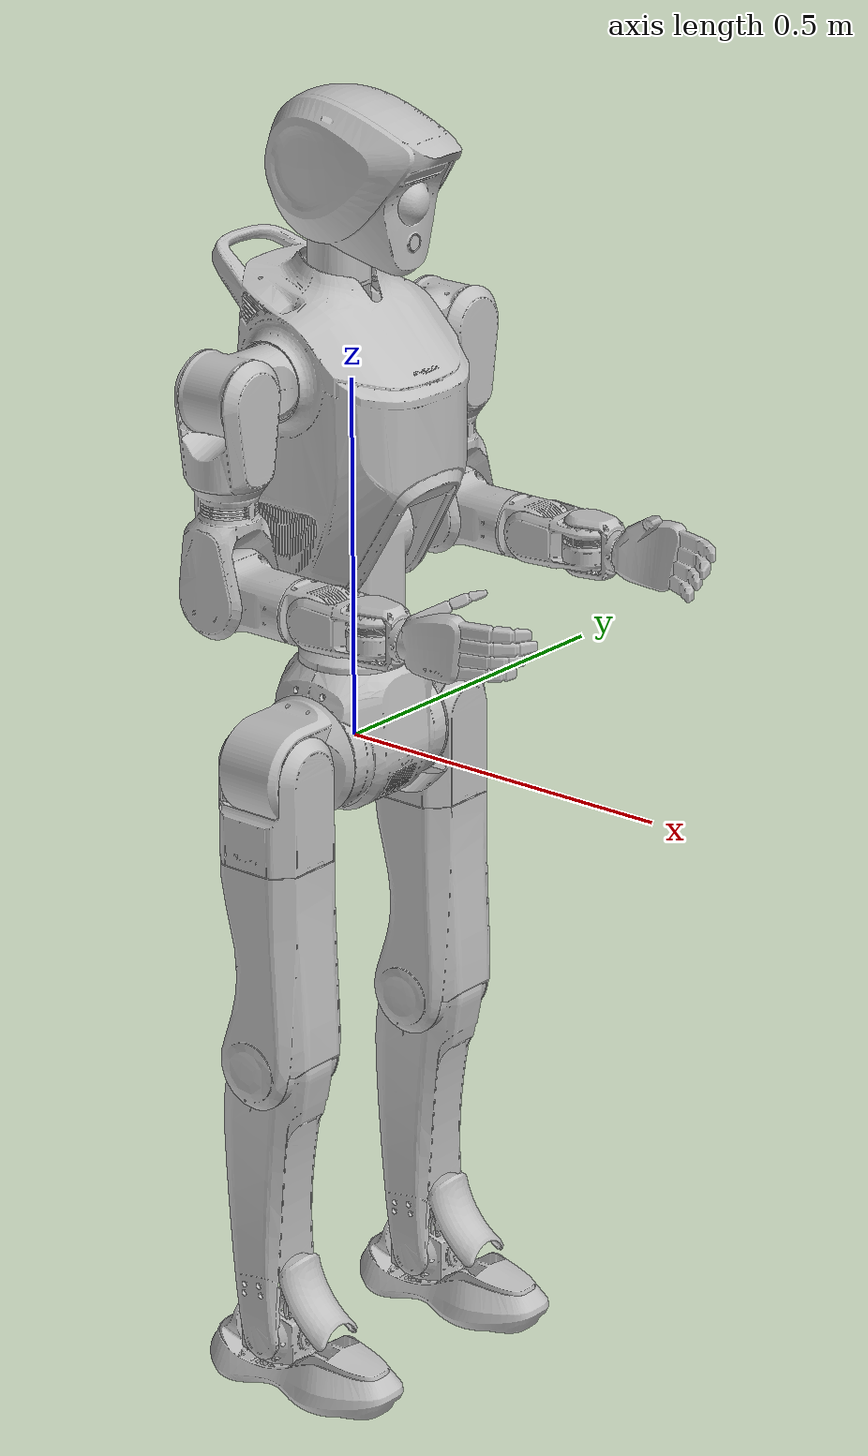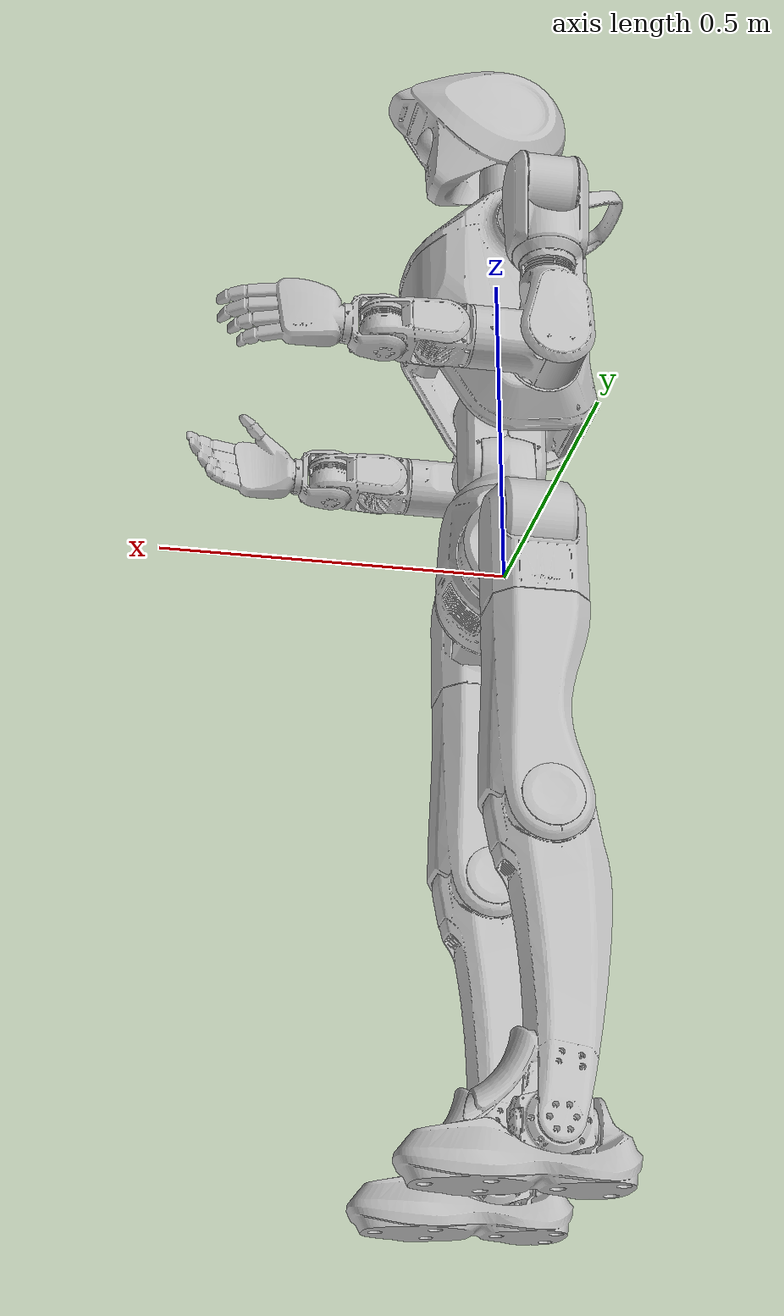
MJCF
<mujoco model="DR02_pro">
  <compiler angle="radian" meshdir="meshes/" />
  <asset>
    <mesh name="base_link" file="base_link.STL" />
    <mesh name="waist_z_link" file="waist_z_link.STL" />
    <mesh name="waist_x_link" file="waist_x_link.STL" />
    <mesh name="body" file="body.STL" />
    <mesh name="left_shoulder_y_link" file="left_shoulder_y_link.STL" />
    <mesh name="left_shoulder_x_link" file="left_shoulder_x_link.STL" />
    <mesh name="left_shoulder_z_link" file="left_shoulder_z_link.STL" />
    <mesh name="left_elbow_link" file="left_elbow_link.STL" />
    <mesh name="left_wrist_z_link" file="left_wrist_z_link.STL" />
    <mesh name="left_wrist_y_link" file="left_wrist_y_link.STL" />
    <mesh name="left_wrist_x_link" file="left_wrist_x_link.STL" />
    <mesh name="left_hand_link" file="left_hand_link.STL" />
    <mesh name="right_shoulder_y_link" file="right_shoulder_y_link.STL" />
    <mesh name="right_shoulder_x_link" file="right_shoulder_x_link.STL" />
    <mesh name="right_shoulder_z_link" file="right_shoulder_z_link.STL" />
    <mesh name="right_elbow_link" file="right_elbow_link.STL" />
    <mesh name="right_wrist_z_link" file="right_wrist_z_link.STL" />
    <mesh name="right_wrist_y_link" file="right_wrist_y_link.STL" />
    <mesh name="right_wrist_x_link" file="right_wrist_x_link.STL" />
    <mesh name="right_hand_link" file="right_hand_link.STL" />
    <mesh name="neck_link" file="neck_link.STL" />
    <mesh name="head_link" file="head_link.STL" />
    <mesh name="left_hip_y_link" file="left_hip_y_link.STL" />
    <mesh name="left_hip_x_link" file="left_hip_x_link.STL" />
    <mesh name="left_hip_z_link" file="left_hip_z_link.STL" />
    <mesh name="left_knee_link" file="left_knee_link.STL" />
    <mesh name="left_ankle_y_link" file="left_ankle_y_link.STL" />
    <mesh name="left_ankle_x_link" file="left_ankle_x_link.STL" />
    <mesh name="right_hip_y_link" file="right_hip_y_link.STL" />
    <mesh name="right_hip_x_link" file="right_hip_x_link.STL" />
    <mesh name="right_hip_z_link" file="right_hip_z_link.STL" />
    <mesh name="right_knee_link" file="right_knee_link.STL" />
    <mesh name="right_ankle_y_link" file="right_ankle_y_link.STL" />
    <mesh name="right_ankle_x_link" file="right_ankle_x_link.STL" />
    <material name="base_link_mat" rgba="0.7529 0.7529 0.7529 1" specular="0" />
    <material name="waist_z_link_mat" rgba="0.7529 0.7529 0.7529 1" specular="0" />
    <material name="waist_x_link_mat" rgba="0.7529 0.7529 0.7529 1" specular="0" />
    <material name="body_mat" rgba="0.7529 0.7529 0.7529 1" specular="0" />
    <material name="left_shoulder_y_link_mat" rgba="0.7529 0.7529 0.7529 1" specular="0" />
    <material name="left_shoulder_x_link_mat" rgba="0.7529 0.7529 0.7529 1" specular="0" />
    <material name="left_shoulder_z_link_mat" rgba="0.7529 0.7529 0.7529 1" specular="0" />
    <material name="left_elbow_link_mat" rgba="0.7529 0.7529 0.7529 1" specular="0" />
    <material name="left_wrist_z_link_mat" rgba="0.7529 0.7529 0.7529 1" specular="0" />
    <material name="left_wrist_y_link_mat" rgba="0.7529 0.7529 0.7529 1" specular="0" />
    <material name="left_wrist_x_link_mat" rgba="0.7529 0.7529 0.7529 1" specular="0" />
    <material name="left_hand_link_mat" rgba="0.7529 0.7529 0.7529 1" specular="0" />
    <material name="right_shoulder_y_link_mat" rgba="0.7529 0.7529 0.7529 1" specular="0" />
    <material name="right_shoulder_x_link_mat" rgba="0.7529 0.7529 0.7529 1" specular="0" />
    <material name="right_shoulder_z_link_mat" rgba="0.7529 0.7529 0.7529 1" specular="0" />
    <material name="right_elbow_link_mat" rgba="0.7529 0.7529 0.7529 1" specular="0" />
    <material name="right_wrist_z_link_mat" rgba="0.7529 0.7529 0.7529 1" specular="0" />
    <material name="right_wrist_y_link_mat" rgba="0.7529 0.7529 0.7529 1" specular="0" />
    <material name="right_wrist_x_link_mat" rgba="0.7529 0.7529 0.7529 1" specular="0" />
    <material name="right_hand_link_mat" rgba="0.7529 0.7529 0.7529 1" specular="0" />
    <material name="neck_link_mat" rgba="0.7529 0.7529 0.7529 1" specular="0" />
    <material name="head_link_mat" rgba="0.7529 0.7529 0.7529 1" specular="0" />
    <material name="left_hip_y_link_mat" rgba="0.7529 0.7529 0.7529 1" specular="0" />
    <material name="left_hip_x_link_mat" rgba="0.7529 0.7529 0.7529 1" specular="0" />
    <material name="left_hip_z_link_mat" rgba="0.7529 0.7529 0.7529 1" specular="0" />
    <material name="left_knee_link_mat" rgba="0.7529 0.7529 0.7529 1" specular="0" />
    <material name="left_ankle_y_link_mat" rgba="0.7529 0.7529 0.7529 1" specular="0" />
    <material name="left_ankle_x_link_mat" rgba="0.7529 0.7529 0.7529 1" specular="0" />
    <material name="right_hip_y_link_mat" rgba="0.7529 0.7529 0.7529 1" specular="0" />
    <material name="right_hip_x_link_mat" rgba="0.7529 0.7529 0.7529 1" specular="0" />
    <material name="right_hip_z_link_mat" rgba="0.7529 0.7529 0.7529 1" specular="0" />
    <material name="right_knee_link_mat" rgba="0.7529 0.7529 0.7529 1" specular="0" />
    <material name="right_ankle_y_link_mat" rgba="0.7529 0.7529 0.7529 1" specular="0" />
    <material name="right_ankle_x_link_mat" rgba="0.7529 0.7529 0.7529 1" specular="0" />
  </asset>

  <worldbody>
    <body name="base_link" pos="0 0 0">
      <freejoint/>
      <inertial pos="0.000093 0.000006 0.013323" mass="8.078843" fullinertia="0.048025 0.033226 0.038207 0.000023 -0.000507 -0.000004"/>
      <geom pos="0 0 0" group="1" contype="0" conaffinity="0" material="base_link_mat" type="mesh" mesh="base_link" />
      <geom pos="0 0 0" quat="0.7071068 0.7071068 0 0" rgba="0.9373 0.2667 0.2667 1" group="3" contype="1" conaffinity="1" type="cylinder" size="0.085 0.07" />
      <body name="waist_z_link" pos="0 0 0.176">
        <joint name="waist_z_joint" type="hinge" axis="0 0 1" limited="true" range="-1.7453 3.6652" damping="0" frictionloss="0"/>
        <inertial pos="-0.002936 -0.001561 -0.014041" mass="1.694743" fullinertia="0.002899 0.003143 0.002813 -0.000006 -0.00004 0.000019"/>
        <geom pos="0 0 0" group="1" contype="0" conaffinity="0" material="waist_z_link_mat" type="mesh" mesh="waist_z_link" />
        <geom pos="0 0 -0.065" rgba="0.9373 0.2667 0.2667 1" group="3" contype="1" conaffinity="1" type="cylinder" size="0.08 0.02" />
        <body name="waist_x_link" pos="0 0 0">
          <joint name="waist_x_joint" type="hinge" axis="1 0 0" limited="true" range="-0.6981 0.6981" damping="0" frictionloss="0"/>
          <inertial pos="0.000955 0.006834 0.098478" mass="2.795884" fullinertia="0.008477 0.008945 0.005776 -0.000054 -0.000012 0.000354"/>
          <geom pos="0 0 0" group="1" contype="0" conaffinity="0" material="waist_x_link_mat" type="mesh" mesh="waist_x_link" />
          <geom pos="0 0 0.03" rgba="0.9373 0.2667 0.2667 1" group="3" contype="1" conaffinity="1" type="box" size="0.06 0.045 0.07" />
          <body name="body" pos="0 0 0.114">
            <joint name="waist_y_joint" type="hinge" axis="0 1 0" limited="true" range="-0.5236 1.5708" damping="0" frictionloss="0"/>
            <inertial pos="-0.02736 0.000277 0.165088" mass="19.455528" fullinertia="0.199365 0.190686 0.122555 -0.000372 -0.009879 0.000019"/>
            <geom pos="0 0 0" group="1" contype="0" conaffinity="0" material="body_mat" type="mesh" mesh="body" />
            <geom pos="-0.025 0 0" rgba="0.9373 0.2667 0.2667 1" group="3" contype="1" conaffinity="1" type="box" size="0.1 0.115 0.055" />
            <geom pos="0 0 0.158" rgba="0.9373 0.2667 0.2667 1" group="3" contype="1" conaffinity="1" type="box" size="0.125 0.125 0.09" />
            <geom pos="-0.01 0 0.29" rgba="0.9373 0.2667 0.2667 1" group="3" contype="1" conaffinity="1" type="box" size="0.1 0.12 0.03" />
            <body name="left_shoulder_y_link" pos="-0.02 0.22315 0.235">
              <joint name="left_shoulder_y_joint" type="hinge" axis="0 1 0" limited="true" range="-3.8397 1.5708" damping="0" frictionloss="0"/>
              <inertial pos="0.001479 -0.014833 0.000165" mass="1.400436" fullinertia="0.001991 0.001019 0.001997 0.000033 0.000001 -0.000002"/>
              <geom pos="0 0 0" group="1" contype="0" conaffinity="0" material="left_shoulder_y_link_mat" type="mesh" mesh="left_shoulder_y_link" />
              <body name="left_shoulder_x_link" pos="0 0 0">
                <joint name="left_shoulder_x_joint" type="hinge" axis="1 0 0" limited="true" range="-0.349066 3.49066" damping="0" frictionloss="0"/>
                <inertial pos="0.000432 0 -0.048362" mass="0.697075" fullinertia="0.001572 0.002243 0.001601 0 -0.000004 0"/>
                <geom pos="0 0 0" group="1" contype="0" conaffinity="0" material="left_shoulder_x_link_mat" type="mesh" mesh="left_shoulder_x_link" />
                <geom pos="0 0 -0.09" rgba="0.9373 0.2667 0.2667 1" group="3" contype="1" conaffinity="1" type="cylinder" size="0.055 0.0275" />
                <geom pos="0 0 0" quat="0.7071068 0 0.7071068 0" rgba="0.9373 0.2667 0.2667 1" group="3" contype="1" conaffinity="1" type="cylinder" size="0.055 0.055" />
                <body name="left_shoulder_z_link" pos="0 0 -0.265">
                  <joint name="left_shoulder_z_joint" type="hinge" axis="0 0 1" limited="true" range="-2.9671 2.9671" damping="0" frictionloss="0"/>
                  <inertial pos="-0.00426 -0.0003 0.094408" mass="1.720926" fullinertia="0.00612 0.005808 0.001952 0.000004 0.000286 0.000054"/>
                  <geom pos="0 0 0" group="1" contype="0" conaffinity="0" material="left_shoulder_z_link_mat" type="mesh" mesh="left_shoulder_z_link" />
                  <geom pos="-0.005 0 0.08" rgba="0.9373 0.2667 0.2667 1" group="3" contype="1" conaffinity="1" type="cylinder" size="0.057 0.02" />
                  <body name="left_elbow_link" pos="0 0 0" quat="0.7071055 0 -0.7071081 0">
                    <joint name="left_elbow_joint" type="hinge" axis="0 1 0" limited="true" range="-0.767945 1.74533" damping="0" frictionloss="0"/>
                    <inertial pos="-0.000115 0.000392 -0.030212" mass="1.77865" fullinertia="0.003455 0.003429 0.00111 0.000013 0.000015 0.000036"/>
                    <geom pos="0 0 0" group="1" contype="0" conaffinity="0" material="left_elbow_link_mat" type="mesh" mesh="left_elbow_link" />
                    <geom pos="0 0 0" quat="0.7071068 0.7071068 0 0" rgba="0.9373 0.2667 0.2667 1" group="3" contype="1" conaffinity="1" type="cylinder" size="0.055 0.055" />
                    <geom pos="0 0 -0.09" rgba="0.9373 0.2667 0.2667 1" group="3" contype="1" conaffinity="1" type="cylinder" size="0.045 0.03" />
                    <body name="left_wrist_z_link" pos="0 0 -0.1595">
                      <joint name="left_wrist_z_joint" type="hinge" axis="0 0 1" limited="true" range="-2.9671 2.9671" damping="0" frictionloss="0"/>
                      <inertial pos="0.000148 -0.000673 0.006914" mass="0.710278" fullinertia="0.000486 0.000498 0.000376 0.000001 -0.000001 0.00001"/>
                      <geom pos="0 0 0" group="1" contype="0" conaffinity="0" material="left_wrist_z_link_mat" type="mesh" mesh="left_wrist_z_link" />
                      <geom pos="0 0 -0.01" quat="0.7071068 0.7071068 0 0" rgba="0.9373 0.2667 0.2667 1" group="3" contype="1" conaffinity="1" type="cylinder" size="0.042 0.045" />
                      <body name="left_wrist_y_link" pos="0 0 0">
                        <joint name="left_wrist_y_joint" type="hinge" axis="0 1 0" limited="true" range="-1.5708 1.5708" damping="0" frictionloss="0"/>
                        <inertial pos="0.00063 -0.000004 -0.065156" mass="0.774016" fullinertia="0.000986 0.000886 0.000541 -0.000001 0.000007 0"/>
                        <geom pos="0 0 0" group="1" contype="0" conaffinity="0" material="left_wrist_y_link_mat" type="mesh" mesh="left_wrist_y_link" />
                        <geom pos="0 0 -0.09" quat="0.7071068 0 0.7071068 0" rgba="0.9373 0.2667 0.2667 1" group="3" contype="1" conaffinity="1" type="cylinder" size="0.035 0.0425" />
                        <body name="left_wrist_x_link" pos="0 0 -0.08">
                          <joint name="left_wrist_x_joint" type="hinge" axis="1 0 0" limited="true" range="-1.5708 1.5708" damping="0" frictionloss="0"/>
                          <inertial pos="-0.000378 0 -0.027815" mass="0.158317" fullinertia="0.000122 0.000236 0.000178 0 -0.000007 0"/>
                          <geom pos="0 0 0" group="1" contype="0" conaffinity="0" material="left_wrist_x_link_mat" type="mesh" mesh="left_wrist_x_link" />
                          <body name="left_hand_link" pos="0 0 -0.0602">
                            <inertial pos="0.011516 -0.002698 -0.065583" mass="0.23" fullinertia="0.0006 0.000689 0.000222 -0.000007 -0.000041 0.000075"/>
                            <geom pos="0 0 0" group="1" contype="0" conaffinity="0" material="left_hand_link_mat" type="mesh" mesh="left_hand_link" />
                            <geom pos="0 0 0" rgba="0.9373 0.2667 0.2667 1" group="3" contype="1" conaffinity="1" type="mesh" mesh="left_hand_link" />
                          </body>
                        </body>
                      </body>
                    </body>
                  </body>
                </body>
              </body>
            </body>
            <body name="right_shoulder_y_link" pos="-0.02 -0.22315 0.235">
              <joint name="right_shoulder_y_joint" type="hinge" axis="0 1 0" limited="true" range="-3.8397 1.5708" damping="0" frictionloss="0"/>
              <inertial pos="0.001479 0.014833 -0.000165" mass="1.400436" fullinertia="0.001991 0.001019 0.001997 -0.000033 -0.000001 -0.000002"/>
              <geom pos="0 0 0" group="1" contype="0" conaffinity="0" material="right_shoulder_y_link_mat" type="mesh" mesh="right_shoulder_y_link" />
              <body name="right_shoulder_x_link" pos="0 0 0">
                <joint name="right_shoulder_x_joint" type="hinge" axis="1 0 0" limited="true" range="-3.49066 0.349066" damping="0" frictionloss="0"/>
                <inertial pos="0.000432 0 -0.048362" mass="0.697075" fullinertia="0.001572 0.002243 0.001601 0 -0.000004 0"/>
                <geom pos="0 0 0" group="1" contype="0" conaffinity="0" material="right_shoulder_x_link_mat" type="mesh" mesh="right_shoulder_x_link" />
                <geom pos="0 0 -0.09" rgba="0.9373 0.2667 0.2667 1" group="3" contype="1" conaffinity="1" type="cylinder" size="0.055 0.0275" />
                <geom pos="0 0 0" quat="0.7071068 0 0.7071068 0" rgba="0.9373 0.2667 0.2667 1" group="3" contype="1" conaffinity="1" type="cylinder" size="0.055 0.055" />
                <body name="right_shoulder_z_link" pos="0 0 -0.265">
                  <joint name="right_shoulder_z_joint" type="hinge" axis="0 0 1" limited="true" range="-2.9671 2.9671" damping="0" frictionloss="0"/>
                  <inertial pos="-0.00426 -0.0003 0.094408" mass="1.720926" fullinertia="0.00612 0.005808 0.001952 0.000004 0.000286 0.000054"/>
                  <geom pos="0 0 0" group="1" contype="0" conaffinity="0" material="right_shoulder_z_link_mat" type="mesh" mesh="right_shoulder_z_link" />
                  <geom pos="-0.005 0 0.08" rgba="0.9373 0.2667 0.2667 1" group="3" contype="1" conaffinity="1" type="cylinder" size="0.057 0.02" />
                  <body name="right_elbow_link" pos="0 0 0" quat="0.7071055 0 -0.7071081 0">
                    <joint name="right_elbow_joint" type="hinge" axis="0 1 0" limited="true" range="-0.767945 1.74533" damping="0" frictionloss="0"/>
                    <inertial pos="-0.000117 0.000389 -0.030213" mass="1.77865" fullinertia="0.003455 0.003429 0.00111 0.000013 0.000015 0.000036"/>
                    <geom pos="0 0 0" group="1" contype="0" conaffinity="0" material="right_elbow_link_mat" type="mesh" mesh="right_elbow_link" />
                    <geom pos="0 0 0" quat="0.7071068 0.7071068 0 0" rgba="0.9373 0.2667 0.2667 1" group="3" contype="1" conaffinity="1" type="cylinder" size="0.055 0.055" />
                    <geom pos="0 0 -0.09" rgba="0.9373 0.2667 0.2667 1" group="3" contype="1" conaffinity="1" type="cylinder" size="0.045 0.03" />
                    <body name="right_wrist_z_link" pos="0 0 -0.1595">
                      <joint name="right_wrist_z_joint" type="hinge" axis="0 0 1" limited="true" range="-2.9671 2.9671" damping="0" frictionloss="0"/>
                      <inertial pos="0.000148 -0.000673 0.006914" mass="0.710278" fullinertia="0.000486 0.000498 0.000376 0.000001 -0.000001 0.00001"/>
                      <geom pos="0 0 0" group="1" contype="0" conaffinity="0" material="right_wrist_z_link_mat" type="mesh" mesh="right_wrist_z_link" />
                      <geom pos="0 0 -0.01" quat="0.7071068 0.7071068 0 0" rgba="0.9373 0.2667 0.2667 1" group="3" contype="1" conaffinity="1" type="cylinder" size="0.042 0.045" />
                      <body name="right_wrist_y_link" pos="0 0 0">
                        <joint name="right_wrist_y_joint" type="hinge" axis="0 1 0" limited="true" range="-1.5708 1.5708" damping="0" frictionloss="0"/>
                        <inertial pos="0.00063 -0.000004 -0.065156" mass="0.774016" fullinertia="0.000986 0.000886 0.000541 -0.000001 0.000007 0"/>
                        <geom pos="0 0 0" group="1" contype="0" conaffinity="0" material="right_wrist_y_link_mat" type="mesh" mesh="right_wrist_y_link" />
                        <geom pos="0 0 -0.09" quat="0.7071068 0 0.7071068 0" rgba="0.9373 0.2667 0.2667 1" group="3" contype="1" conaffinity="1" type="cylinder" size="0.035 0.0425" />
                        <body name="right_wrist_x_link" pos="0 0 -0.08">
                          <joint name="right_wrist_x_joint" type="hinge" axis="1 0 0" limited="true" range="-1.5708 1.5708" damping="0" frictionloss="0"/>
                          <inertial pos="-0.00038 0 -0.027815" mass="0.158317" fullinertia="0.000122 0.000236 0.000178 0 -0.000007 0"/>
                          <geom pos="0 0 0" group="1" contype="0" conaffinity="0" material="right_wrist_x_link_mat" type="mesh" mesh="right_wrist_x_link" />
                          <body name="right_hand_link" pos="0 0 -0.0602">
                            <inertial pos="0.011411 0.002729 -0.06492" mass="0.23" fullinertia="0.000602 0.000691 0.000221 0.000007 -0.000042 -0.000074"/>
                            <geom pos="0 0 0" group="1" contype="0" conaffinity="0" material="right_hand_link_mat" type="mesh" mesh="right_hand_link" />
                            <geom pos="0 0 0" rgba="0.9373 0.2667 0.2667 1" group="3" contype="1" conaffinity="1" type="mesh" mesh="right_hand_link" />
                          </body>
                        </body>
                      </body>
                    </body>
                  </body>
                </body>
              </body>
            </body>
            <body name="neck_link" pos="-0.02 0 0.4645">
              <joint name="neck_z_joint" type="hinge" axis="0 0 1" limited="true" range="-1.745329 3.665191" damping="0" frictionloss="0"/>
              <inertial pos="0.000649 0.00075 -0.060572" mass="1.532065" fullinertia="0.005199 0.005165 0.001384 0.000002 -0.000063 0.000078"/>
              <geom pos="0 0 0" group="1" contype="0" conaffinity="0" material="neck_link_mat" type="mesh" mesh="neck_link" />
              <geom pos="-0.009 0 -0.1" rgba="0.9373 0.2667 0.2667 1" group="3" contype="1" conaffinity="1" type="cylinder" size="0.05 0.035" />
              <body name="head_link" pos="0 0 0">
                <joint name="neck_y_joint" type="hinge" axis="0 1 0" limited="true" range="-0.349066 0.349066" damping="0" frictionloss="0"/>
                <inertial pos="0.049972 -0.00004 0.036839" mass="2.577004" fullinertia="0.011375 0.018713 0.015509 -0.000086 -0.001142 -0.000017"/>
                <geom pos="0 0 0" group="1" contype="0" conaffinity="0" material="head_link_mat" type="mesh" mesh="head_link" />
                <geom pos="0.02 0 0.028" rgba="0.9373 0.2667 0.2667 1" group="3" contype="1" conaffinity="1" type="sphere" size="0.115" />
              </body>
            </body>
            <body name="d435_head_link" pos="0.11871 0.0175 0.5096" quat="0.9537177 0 0.3007033 0">
            </body>
            <body name="d435_front_link" pos="0.12559 0.0175 0.078407" quat="0.8660248 0 0.5000011 0">
            </body>
            <body name="d435_rear_link" pos="-0.11241 -0.0175 -0.037264" quat="-0.0000032 -0.5000011 -0.0000018 0.8660248">
            </body>
            <body name="lidar_link" pos="0.09784 0.00001 0.4645">
            </body>
            <body name="imu_head_link" pos="-0.0003333 0.021947 0.56429">
            </body>
            <body name="imu_base_link" pos="-0.0003333 0.0014869 -0.3546">
            </body>
          </body>
        </body>
      </body>
      <body name="left_hip_y_link" pos="0 0.1614 0">
        <joint name="left_hip_y_joint" type="hinge" axis="0 1 0" limited="true" range="-2.7925 1.5708" damping="0" frictionloss="0"/>
        <inertial pos="0.004459 -0.007774 0.001313" mass="2.633192" fullinertia="0.005575 0.005395 0.005662 0.000142 -0.00004 -0.000144"/>
        <geom pos="0 0 0" group="1" contype="0" conaffinity="0" material="left_hip_y_link_mat" type="mesh" mesh="left_hip_y_link" />
        <geom pos="0 0 0" quat="0.7071068 0 0.7071068 0" rgba="0.9373 0.2667 0.2667 1" group="3" contype="1" conaffinity="1" type="cylinder" size="0.07 0.0675" />
        <body name="left_hip_x_link" pos="0 0 0">
          <joint name="left_hip_x_joint" type="hinge" axis="1 0 0" limited="true" range="-0.349066 2.618" damping="0" frictionloss="0"/>
          <inertial pos="0.001042 0.00317 -0.074161" mass="1.131509" fullinertia="0.004145 0.005869 0.003914 0.00001 0.000131 -0.000028"/>
          <geom pos="0 0 0" group="1" contype="0" conaffinity="0" material="left_hip_x_link_mat" type="mesh" mesh="left_hip_x_link" />
          <body name="left_hip_z_link" pos="0 0 -0.1282">
            <joint name="left_hip_z_joint" type="hinge" axis="0 0 1" limited="true" range="-0.5236 3.6652" damping="0" frictionloss="0"/>
            <inertial pos="0.008727 -0.002657 -0.111164" mass="2.690763" fullinertia="0.030191 0.028573 0.007663 0.000088 -0.001328 0.001237"/>
            <geom pos="0 0 0" group="1" contype="0" conaffinity="0" material="left_hip_z_link_mat" type="mesh" mesh="left_hip_z_link" />
            <geom pos="0 0 -0.115" rgba="0.9373 0.2667 0.2667 1" group="3" contype="1" conaffinity="1" type="cylinder" size="0.07 0.11" />
            <body name="left_knee_link" pos="0 0 -0.2912">
              <joint name="left_knee_joint" type="hinge" axis="0 1 0" limited="true" range="-0.17453 2.4958" damping="0" frictionloss="0"/>
              <inertial pos="-0.005009 -0.00145 -0.092743" mass="4.246652" fullinertia="0.087743 0.08693 0.009302 0.000037 0.002339 -0.001565"/>
              <geom pos="0 0 0" group="1" contype="0" conaffinity="0" material="left_knee_link_mat" type="mesh" mesh="left_knee_link" />
              <geom pos="0 0 0" quat="0.7071068 0.7071068 0 0" rgba="0.9373 0.2667 0.2667 1" group="3" contype="1" conaffinity="1" type="cylinder" size="0.06 0.07" />
              <geom pos="-0.02 0 -0.21" rgba="0.9373 0.2667 0.2667 1" group="3" contype="1" conaffinity="1" type="cylinder" size="0.06 0.14" />
              <body name="left_ankle_y_link" pos="0 0 -0.41">
                <joint name="left_ankle_y_joint" type="hinge" axis="0 1 0" limited="true" range="-1.0472 0.7854" damping="0" frictionloss="0"/>
                <inertial pos="0.000479 0.003282 0.000327" mass="1.377835" fullinertia="0.001529 0.001772 0.001906 -0.000012 0.000002 -0.000003"/>
                <geom pos="0 0 0" group="1" contype="0" conaffinity="0" material="left_ankle_y_link_mat" type="mesh" mesh="left_ankle_y_link" />
                <geom pos="0 0 0" quat="0.7071068 0.7071068 0 0" rgba="0.9373 0.2667 0.2667 1" group="3" contype="1" conaffinity="1" type="cylinder" size="0.044 0.055" />
                <body name="left_ankle_x_link" pos="0 0 0">
                  <joint name="left_ankle_x_joint" type="hinge" axis="1 0 0" limited="true" range="-0.61087 0.61087" damping="0" frictionloss="0"/>
                  <inertial pos="0.047077 0.00007 -0.031008" mass="1.425863" fullinertia="0.00228 0.008128 0.007645 0.000004 0.000481 0.000002"/>
                  <geom pos="0 0 0" group="1" contype="0" conaffinity="0" material="left_ankle_x_link_mat" type="mesh" mesh="left_ankle_x_link" />
                  <geom pos="0.045 0 -0.045" rgba="0.9373 0.2667 0.2667 1" group="3" contype="1" conaffinity="1" type="box" size="0.15 0.055 0.03" />
                </body>
              </body>
            </body>
          </body>
        </body>
      </body>
      <body name="right_hip_y_link" pos="0 -0.1614 0">
        <joint name="right_hip_y_joint" type="hinge" axis="0 1 0" limited="true" range="-2.7925 1.5708" damping="0" frictionloss="0"/>
        <inertial pos="-0.004459 0.007774 0.001313" mass="2.633192" fullinertia="0.005575 0.005395 0.005662 0.000142 0.00004 0.000144"/>
        <geom pos="0 0 0" group="1" contype="0" conaffinity="0" material="right_hip_y_link_mat" type="mesh" mesh="right_hip_y_link" />
        <geom pos="0 0 0" quat="0.7071068 0 0.7071068 0" rgba="0.9373 0.2667 0.2667 1" group="3" contype="1" conaffinity="1" type="cylinder" size="0.07 0.0675" />
        <body name="right_hip_x_link" pos="0 0 0">
          <joint name="right_hip_x_joint" type="hinge" axis="1 0 0" limited="true" range="-2.618 0.349066" damping="0" frictionloss="0"/>
          <inertial pos="-0.001042 -0.00317 -0.074161" mass="1.131509" fullinertia="0.004145 0.005869 0.003914 0.00001 -0.000131 0.000028"/>
          <geom pos="0 0 0" group="1" contype="0" conaffinity="0" material="right_hip_x_link_mat" type="mesh" mesh="right_hip_x_link" />
          <body name="right_hip_z_link" pos="0 0 -0.1282">
            <joint name="right_hip_z_joint" type="hinge" axis="0 0 1" limited="true" range="-3.6652 0.5236" damping="0" frictionloss="0"/>
            <inertial pos="0.008727 -0.002657 -0.111164" mass="2.690763" fullinertia="0.030191 0.028573 0.007663 0.000088 -0.001328 0.001237"/>
            <geom pos="0 0 0" group="1" contype="0" conaffinity="0" material="right_hip_z_link_mat" type="mesh" mesh="right_hip_z_link" />
            <geom pos="0 0 -0.115" rgba="0.9373 0.2667 0.2667 1" group="3" contype="1" conaffinity="1" type="cylinder" size="0.07 0.11" />
            <body name="right_knee_link" pos="0 0 -0.2912">
              <joint name="right_knee_joint" type="hinge" axis="0 1 0" limited="true" range="-0.17453 2.4958" damping="0" frictionloss="0"/>
              <inertial pos="-0.005009 -0.00145 -0.092743" mass="4.246652" fullinertia="0.087743 0.08693 0.009302 0.000037 0.002339 -0.001565"/>
              <geom pos="0 0 0" group="1" contype="0" conaffinity="0" material="right_knee_link_mat" type="mesh" mesh="right_knee_link" />
              <geom pos="0 0 0" quat="0.7071068 0.7071068 0 0" rgba="0.9373 0.2667 0.2667 1" group="3" contype="1" conaffinity="1" type="cylinder" size="0.06 0.07" />
              <geom pos="-0.02 0 -0.21" rgba="0.9373 0.2667 0.2667 1" group="3" contype="1" conaffinity="1" type="cylinder" size="0.06 0.14" />
              <body name="right_ankle_y_link" pos="0 0 -0.41">
                <joint name="right_ankle_y_joint" type="hinge" axis="0 1 0" limited="true" range="-1.0472 0.7854" damping="0" frictionloss="0"/>
                <inertial pos="0.000479 0.003282 0.000327" mass="1.377835" fullinertia="0.001529 0.001772 0.001906 -0.000012 0.000002 -0.000003"/>
                <geom pos="0 0 0" group="1" contype="0" conaffinity="0" material="right_ankle_y_link_mat" type="mesh" mesh="right_ankle_y_link" />
                <geom pos="0 0 0" quat="0.7071068 0.7071068 0 0" rgba="0.9373 0.2667 0.2667 1" group="3" contype="1" conaffinity="1" type="cylinder" size="0.044 0.055" />
                <body name="right_ankle_x_link" pos="0 0 0">
                  <joint name="right_ankle_x_joint" type="hinge" axis="1 0 0" limited="true" range="-0.61087 0.61087" damping="0" frictionloss="0"/>
                  <inertial pos="0.047077 0.00007 -0.031008" mass="1.425863" fullinertia="0.00228 0.008128 0.007645 0.000004 0.000481 0.000002"/>
                  <geom pos="0 0 0" group="1" contype="0" conaffinity="0" material="right_ankle_x_link_mat" type="mesh" mesh="right_ankle_x_link" />
                  <geom pos="0.045 0 -0.045" rgba="0.9373 0.2667 0.2667 1" group="3" contype="1" conaffinity="1" type="box" size="0.15 0.055 0.03" />
                </body>
              </body>
            </body>
          </body>
        </body>
      </body>
    </body>
  </worldbody>
  <actuator>
    <motor name="waist_z_joint_motor" joint="waist_z_joint" gear="1" ctrllimited="true" ctrlrange="-137 137" />
    <motor name="waist_x_joint_motor" joint="waist_x_joint" gear="1" ctrllimited="true" ctrlrange="-137 137" />
    <motor name="waist_y_joint_motor" joint="waist_y_joint" gear="1" ctrllimited="true" ctrlrange="-363 363" />
    <motor name="left_shoulder_y_joint_motor" joint="left_shoulder_y_joint" gear="1" ctrllimited="true" ctrlrange="-137 137" />
    <motor name="left_shoulder_x_joint_motor" joint="left_shoulder_x_joint" gear="1" ctrllimited="true" ctrlrange="-137 137" />
    <motor name="left_shoulder_z_joint_motor" joint="left_shoulder_z_joint" gear="1" ctrllimited="true" ctrlrange="-137 137" />
    <motor name="left_elbow_joint_motor" joint="left_elbow_joint" gear="1" ctrllimited="true" ctrlrange="-137 137" />
    <motor name="left_wrist_z_joint_motor" joint="left_wrist_z_joint" gear="1" ctrllimited="true" ctrlrange="-50 50" />
    <motor name="left_wrist_y_joint_motor" joint="left_wrist_y_joint" gear="1" ctrllimited="true" ctrlrange="-50 50" />
    <motor name="left_wrist_x_joint_motor" joint="left_wrist_x_joint" gear="1" ctrllimited="true" ctrlrange="-50 50" />
    <motor name="right_shoulder_y_joint_motor" joint="right_shoulder_y_joint" gear="1" ctrllimited="true" ctrlrange="-137 137" />
    <motor name="right_shoulder_x_joint_motor" joint="right_shoulder_x_joint" gear="1" ctrllimited="true" ctrlrange="-137 137" />
    <motor name="right_shoulder_z_joint_motor" joint="right_shoulder_z_joint" gear="1" ctrllimited="true" ctrlrange="-137 137" />
    <motor name="right_elbow_joint_motor" joint="right_elbow_joint" gear="1" ctrllimited="true" ctrlrange="-137 137" />
    <motor name="right_wrist_z_joint_motor" joint="right_wrist_z_joint" gear="1" ctrllimited="true" ctrlrange="-50 50" />
    <motor name="right_wrist_y_joint_motor" joint="right_wrist_y_joint" gear="1" ctrllimited="true" ctrlrange="-50 50" />
    <motor name="right_wrist_x_joint_motor" joint="right_wrist_x_joint" gear="1" ctrllimited="true" ctrlrange="-50 50" />
    <motor name="neck_z_joint_motor" joint="neck_z_joint" gear="1" ctrllimited="true" ctrlrange="-50 50" />
    <motor name="neck_y_joint_motor" joint="neck_y_joint" gear="1" ctrllimited="true" ctrlrange="-50 50" />
    <motor name="left_hip_y_joint_motor" joint="left_hip_y_joint" gear="1" ctrllimited="true" ctrlrange="-363 363" />
    <motor name="left_hip_x_joint_motor" joint="left_hip_x_joint" gear="1" ctrllimited="true" ctrlrange="-363 363" />
    <motor name="left_hip_z_joint_motor" joint="left_hip_z_joint" gear="1" ctrllimited="true" ctrlrange="-137 137" />
    <motor name="left_knee_joint_motor" joint="left_knee_joint" gear="1" ctrllimited="true" ctrlrange="-363 363" />
    <motor name="left_ankle_y_joint_motor" joint="left_ankle_y_joint" gear="1" ctrllimited="true" ctrlrange="-137 137" />
    <motor name="left_ankle_x_joint_motor" joint="left_ankle_x_joint" gear="1" ctrllimited="true" ctrlrange="-50 50" />
    <motor name="right_hip_y_joint_motor" joint="right_hip_y_joint" gear="1" ctrllimited="true" ctrlrange="-363 363" />
    <motor name="right_hip_x_joint_motor" joint="right_hip_x_joint" gear="1" ctrllimited="true" ctrlrange="-363 363" />
    <motor name="right_hip_z_joint_motor" joint="right_hip_z_joint" gear="1" ctrllimited="true" ctrlrange="-137 137" />
    <motor name="right_knee_joint_motor" joint="right_knee_joint" gear="1" ctrllimited="true" ctrlrange="-363 363" />
    <motor name="right_ankle_y_joint_motor" joint="right_ankle_y_joint" gear="1" ctrllimited="true" ctrlrange="-137 137" />
    <motor name="right_ankle_x_joint_motor" joint="right_ankle_x_joint" gear="1" ctrllimited="true" ctrlrange="-50 50" />
  </actuator>
</mujoco>
